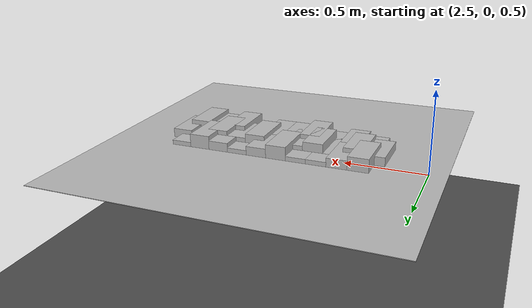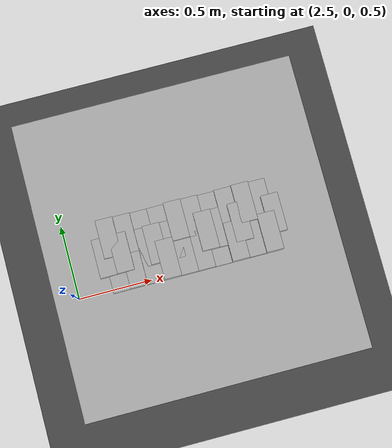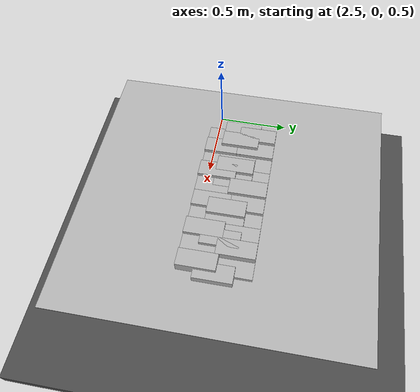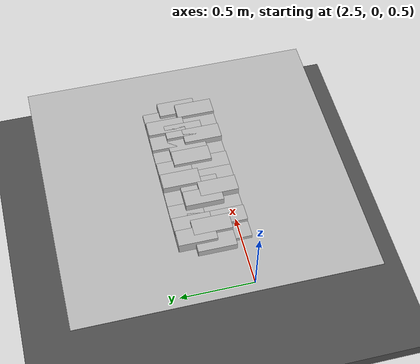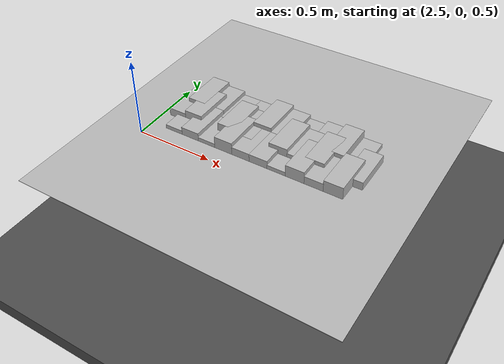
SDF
<sdf version="1.6">
 <world name="default">
  <model name="ground_plane">
   <static>1</static>
   <link name="link">
    <collision name="collision">
     <geometry><plane><normal>0 0 1</normal><size>100 100</size></plane></geometry>
     <surface><friction><ode><mu>100</mu><mu2>50</mu2></ode></friction></surface>
    </collision>
    <visual name="visual">
     <cast_shadows>0</cast_shadows>
     <geometry><plane><normal>0 0 1</normal><size>100 100</size></plane></geometry>
     <material>
      <script><uri>file://media/materials/scripts/gazebo.material</uri><name>Gazebo/Grey</name></script>
     </material>
    </visual>
   </link>
  </model>
  <model name="frc2016_roughterrain_0">
   <link name="link_clone_11">
    <pose>3.41491 0.178957 -0.066641 0 -0 0</pose>
    <inertial>
     <inertia><ixx>nan</ixx><ixy>0</ixy><ixz>0</ixz><iyy>nan</iyy><iyz>0</iyz><izz>nan</izz></inertia>
     <mass>0</mass>
    </inertial>
    <visual name="platform">
     <pose>0 0 0.08269 0 -0 0</pose>
     <geometry><box><size>1.91826 2.01688 0.003175</size></box></geometry>
     <material><shader type="pixel"/></material>
    </visual>
    <visual name="row1_block1_sm">
     <pose>0.51435 0.1143 0.09698 0 -0 0</pose>
     <geometry><box><size>0.115452 0.257474 0.0254</size></box></geometry>
     <material><shader type="pixel"/></material>
    </visual>
    <visual name="row1_block4_sm">
     <pose>0.17145 0.1143 0.09698 0 -0 0</pose>
     <geometry><box><size>0.115452 0.257474 0.0254</size></box></geometry>
     <material><shader type="pixel"/></material>
    </visual>
    <visual name="row1_block3_md">
     <pose>0.28575 0.1143 0.10968 0 -0 0</pose>
     <geometry><box><size>0.115452 0.257474 0.0508</size></box></geometry>
     <material><shader type="pixel"/></material>
    </visual>
    <visual name="row1_block6_lg">
     <pose>-0.05715 0.1143 0.12238 0 -0 0</pose>
     <geometry><box><size>0.115452 0.257474 0.0762</size></box></geometry>
     <material><shader type="pixel"/></material>
    </visual>
    <visual name="row1_block2_lg">
     <pose>0.40005 0.1143 0.12238 0 -0 0</pose>
     <geometry><box><size>0.115452 0.257474 0.0762</size></box></geometry>
     <material><shader type="pixel"/></material>
    </visual>
    <visual name="row1_block5_md">
     <pose>0.05715 0.1143 0.10968 0 -0 0</pose>
     <geometry><box><size>0.115452 0.257474 0.0508</size></box></geometry>
     <material><shader type="pixel"/></material>
    </visual>
    <visual name="row1_block8_sm">
     <pose>-0.28575 0.1143 0.09698 0 -0 0</pose>
     <geometry><box><size>0.115452 0.257474 0.0254</size></box></geometry>
     <material><shader type="pixel"/></material>
    </visual>
    <visual name="row1_block7_sm">
     <pose>-0.17145 0.1143 0.09698 0 -0 0</pose>
     <geometry><box><size>0.115452 0.257474 0.0254</size></box></geometry>
     <material><shader type="pixel"/></material>
    </visual>
    <visual name="row1_block9_md">
     <pose>-0.40005 0.1143 0.10968 0 -0 0</pose>
     <geometry><box><size>0.115452 0.257474 0.0508</size></box></geometry>
     <material><shader type="pixel"/></material>
    </visual>
    <visual name="row1_block10_lg">
     <pose>-0.51435 0.1143 0.12238 0 -0 0</pose>
     <geometry><box><size>0.115452 0.257474 0.0762</size></box></geometry>
     <material><shader type="pixel"/></material>
    </visual>
    <visual name="row2_block1_md">
     <pose>0.5715 0 0.10968 0 -0 0</pose>
     <geometry><box><size>0.115452 0.257474 0.0508</size></box></geometry>
     <material><shader type="pixel"/></material>
    </visual>
    <visual name="row2_block2_sm">
     <pose>0.4572 0 0.09698 0 -0 0</pose>
     <geometry><box><size>0.115452 0.257474 0.0254</size></box></geometry>
     <material><shader type="pixel"/></material>
    </visual>
    <visual name="row2_block3_lg">
     <pose>0.3429 0 0.12238 0 -0 0</pose>
     <geometry><box><size>0.115452 0.257474 0.0762</size></box></geometry>
     <material><shader type="pixel"/></material>
    </visual>
    <visual name="row2_block4_md">
     <pose>0.2286 0 0.10968 0 -0 0</pose>
     <geometry><box><size>0.115452 0.257474 0.0508</size></box></geometry>
     <material><shader type="pixel"/></material>
    </visual>
    <visual name="row2_block5_lg">
     <pose>0.1143 0 0.12238 0 -0 0</pose>
     <geometry><box><size>0.115452 0.257474 0.0762</size></box></geometry>
     <material><shader type="pixel"/></material>
    </visual>
    <visual name="row2_block6_sm">
     <pose>0 0 0.09698 0 -0 0</pose>
     <geometry><box><size>0.115452 0.257474 0.0254</size></box></geometry>
     <material><shader type="pixel"/></material>
    </visual>
    <visual name="row2_block7_md">
     <pose>-0.1143 0 0.10968 0 -0 0</pose>
     <geometry><box><size>0.115452 0.257474 0.0508</size></box></geometry>
     <material><shader type="pixel"/></material>
    </visual>
    <visual name="row2_block8_lg">
     <pose>-0.2286 0 0.12238 0 -0 0</pose>
     <geometry><box><size>0.115452 0.257474 0.0762</size></box></geometry>
     <material><shader type="pixel"/></material>
    </visual>
    <visual name="row2_block9_sm">
     <pose>-0.3429 0 0.09698 0 -0 0</pose>
     <geometry><box><size>0.115452 0.257474 0.0254</size></box></geometry>
     <material><shader type="pixel"/></material>
    </visual>
    <visual name="row2_block10_lg">
     <pose>-0.4572 0 0.12238 0 -0 0</pose>
     <geometry><box><size>0.115452 0.257474 0.0762</size></box></geometry>
     <material><shader type="pixel"/></material>
    </visual>
    <visual name="row2_block11_md">
     <pose>-0.5715 0 0.10968 0 -0 0</pose>
     <geometry><box><size>0.115452 0.257474 0.0508</size></box></geometry>
     <material><shader type="pixel"/></material>
    </visual>
    <visual name="row3_block2_md">
     <pose>0.40005 -0.1143 0.10968 0 -0 0</pose>
     <geometry><box><size>0.115452 0.257474 0.0508</size></box></geometry>
     <material><shader type="pixel"/></material>
    </visual>
    <visual name="row3_block1_lg">
     <pose>0.51435 -0.1143 0.12238 0 -0 0</pose>
     <geometry><box><size>0.115452 0.257474 0.0762</size></box></geometry>
     <material><shader type="pixel"/></material>
    </visual>
    <visual name="row3_block3_lg">
     <pose>0.28575 -0.1143 0.12238 0 -0 0</pose>
     <geometry><box><size>0.115452 0.257474 0.0762</size></box></geometry>
     <material><shader type="pixel"/></material>
    </visual>
    <visual name="row3_block4_sm">
     <pose>0.17145 -0.1143 0.09698 0 -0 0</pose>
     <geometry><box><size>0.115452 0.257474 0.0254</size></box></geometry>
     <material><shader type="pixel"/></material>
    </visual>
    <visual name="row3_block5_md">
     <pose>0.05715 -0.1143 0.10968 0 -0 0</pose>
     <geometry><box><size>0.115452 0.257474 0.0508</size></box></geometry>
     <material><shader type="pixel"/></material>
    </visual>
    <visual name="row3_block6_md">
     <pose>-0.05715 -0.1143 0.10968 0 -0 0</pose>
     <geometry><box><size>0.115452 0.257474 0.0508</size></box></geometry>
     <material><shader type="pixel"/></material>
    </visual>
    <visual name="row3_block8_sm">
     <pose>-0.28575 -0.1143 0.09698 0 -0 0</pose>
     <geometry><box><size>0.115452 0.257474 0.0254</size></box></geometry>
     <material><shader type="pixel"/></material>
    </visual>
    <visual name="row3_block7_lg">
     <pose>-0.17145 -0.1143 0.12238 0 -0 0</pose>
     <geometry><box><size>0.115452 0.257474 0.0762</size></box></geometry>
     <material><shader type="pixel"/></material>
    </visual>
    <visual name="row3_block9_md">
     <pose>-0.40005 -0.1143 0.10968 0 -0 0</pose>
     <geometry><box><size>0.115452 0.257474 0.0508</size></box></geometry>
     <material><shader type="pixel"/></material>
    </visual>
    <visual name="row3_block10_sm">
     <pose>-0.51435 -0.1143 0.09698 0 -0 0</pose>
     <geometry><box><size>0.115452 0.257474 0.0254</size></box></geometry>
     <material><shader type="pixel"/></material>
    </visual>
    <collision name="row2_block5_lg_0">
     <pose>0.1143 0 0.12238 0 -0 0</pose>
     <geometry><box><size>0.115452 0.257474 0.0762</size></box></geometry>
     <surface>
      <friction>
       <ode><mu>1</mu><mu2>1</mu2><fdir1>0 0 0</fdir1><slip1>0</slip1><slip2>0</slip2></ode>
       <torsional>
        <coefficient>1</coefficient>
        <patch_radius>0</patch_radius>
        <surface_radius>0</surface_radius>
        <use_patch_radius>1</use_patch_radius>
        <ode><slip>0</slip></ode>
       </torsional>
      </friction>
      <bounce><restitution_coefficient>0</restitution_coefficient><threshold>1e+06</threshold></bounce>
      <contact>
       <collide_without_contact>0</collide_without_contact>
       <collide_without_contact_bitmask>1</collide_without_contact_bitmask>
       <collide_bitmask>1</collide_bitmask>
       <ode>
        <soft_cfm>0</soft_cfm>
        <soft_erp>0.2</soft_erp>
        <kp>1e+13</kp>
        <kd>1</kd>
        <max_vel>0.01</max_vel>
        <min_depth>0</min_depth>
       </ode>
       <bullet>
        <split_impulse>1</split_impulse>
        <split_impulse_penetration_threshold>-0.01</split_impulse_penetration_threshold>
        <soft_cfm>0</soft_cfm>
        <soft_erp>0.2</soft_erp>
        <kp>1e+13</kp>
        <kd>1</kd>
       </bullet>
      </contact>
     </surface>
    </collision>
    <collision name="platform_0">
     <pose>0 0 0.08269 0 -0 0</pose>
     <geometry><box><size>1.91826 2.01688 0.003175</size></box></geometry>
     <surface>
      <friction>
       <ode><mu>1</mu><mu2>1</mu2><fdir1>0 0 0</fdir1><slip1>0</slip1><slip2>0</slip2></ode>
       <torsional>
        <coefficient>1</coefficient>
        <patch_radius>0</patch_radius>
        <surface_radius>0</surface_radius>
        <use_patch_radius>1</use_patch_radius>
        <ode><slip>0</slip></ode>
       </torsional>
      </friction>
      <bounce><restitution_coefficient>0</restitution_coefficient><threshold>1e+06</threshold></bounce>
      <contact>
       <collide_without_contact>0</collide_without_contact>
       <collide_without_contact_bitmask>1</collide_without_contact_bitmask>
       <collide_bitmask>1</collide_bitmask>
       <ode>
        <soft_cfm>0</soft_cfm>
        <soft_erp>0.2</soft_erp>
        <kp>1e+13</kp>
        <kd>1</kd>
        <max_vel>0.01</max_vel>
        <min_depth>0</min_depth>
       </ode>
       <bullet>
        <split_impulse>1</split_impulse>
        <split_impulse_penetration_threshold>-0.01</split_impulse_penetration_threshold>
        <soft_cfm>0</soft_cfm>
        <soft_erp>0.2</soft_erp>
        <kp>1e+13</kp>
        <kd>1</kd>
       </bullet>
      </contact>
     </surface>
    </collision>
    <collision name="row1_block1_sm_0">
     <pose>0.51435 0.1143 0.09698 0 -0 0</pose>
     <geometry><box><size>0.115452 0.257474 0.0254</size></box></geometry>
     <surface>
      <friction>
       <ode><mu>1</mu><mu2>1</mu2><fdir1>0 0 0</fdir1><slip1>0</slip1><slip2>0</slip2></ode>
       <torsional>
        <coefficient>1</coefficient>
        <patch_radius>0</patch_radius>
        <surface_radius>0</surface_radius>
        <use_patch_radius>1</use_patch_radius>
        <ode><slip>0</slip></ode>
       </torsional>
      </friction>
      <bounce><restitution_coefficient>0</restitution_coefficient><threshold>1e+06</threshold></bounce>
      <contact>
       <collide_without_contact>0</collide_without_contact>
       <collide_without_contact_bitmask>1</collide_without_contact_bitmask>
       <collide_bitmask>1</collide_bitmask>
       <ode>
        <soft_cfm>0</soft_cfm>
        <soft_erp>0.2</soft_erp>
        <kp>1e+13</kp>
        <kd>1</kd>
        <max_vel>0.01</max_vel>
        <min_depth>0</min_depth>
       </ode>
       <bullet>
        <split_impulse>1</split_impulse>
        <split_impulse_penetration_threshold>-0.01</split_impulse_penetration_threshold>
        <soft_cfm>0</soft_cfm>
        <soft_erp>0.2</soft_erp>
        <kp>1e+13</kp>
        <kd>1</kd>
       </bullet>
      </contact>
     </surface>
    </collision>
    <collision name="row1_block3_md_0">
     <pose>0.28575 0.1143 0.10968 0 -0 0</pose>
     <geometry><box><size>0.115452 0.257474 0.0508</size></box></geometry>
     <surface>
      <friction>
       <ode><mu>1</mu><mu2>1</mu2><fdir1>0 0 0</fdir1><slip1>0</slip1><slip2>0</slip2></ode>
       <torsional>
        <coefficient>1</coefficient>
        <patch_radius>0</patch_radius>
        <surface_radius>0</surface_radius>
        <use_patch_radius>1</use_patch_radius>
        <ode><slip>0</slip></ode>
       </torsional>
      </friction>
      <bounce><restitution_coefficient>0</restitution_coefficient><threshold>1e+06</threshold></bounce>
      <contact>
       <collide_without_contact>0</collide_without_contact>
       <collide_without_contact_bitmask>1</collide_without_contact_bitmask>
       <collide_bitmask>1</collide_bitmask>
       <ode>
        <soft_cfm>0</soft_cfm>
        <soft_erp>0.2</soft_erp>
        <kp>1e+13</kp>
        <kd>1</kd>
        <max_vel>0.01</max_vel>
        <min_depth>0</min_depth>
       </ode>
       <bullet>
        <split_impulse>1</split_impulse>
        <split_impulse_penetration_threshold>-0.01</split_impulse_penetration_threshold>
        <soft_cfm>0</soft_cfm>
        <soft_erp>0.2</soft_erp>
        <kp>1e+13</kp>
        <kd>1</kd>
       </bullet>
      </contact>
     </surface>
    </collision>
    <collision name="row1_block2_lg_0">
     <pose>0.40005 0.1143 0.12238 0 -0 0</pose>
     <geometry><box><size>0.115452 0.257474 0.0762</size></box></geometry>
     <surface>
      <friction>
       <ode><mu>1</mu><mu2>1</mu2><fdir1>0 0 0</fdir1><slip1>0</slip1><slip2>0</slip2></ode>
       <torsional>
        <coefficient>1</coefficient>
        <patch_radius>0</patch_radius>
        <surface_radius>0</surface_radius>
        <use_patch_radius>1</use_patch_radius>
        <ode><slip>0</slip></ode>
       </torsional>
      </friction>
      <bounce><restitution_coefficient>0</restitution_coefficient><threshold>1e+06</threshold></bounce>
      <contact>
       <collide_without_contact>0</collide_without_contact>
       <collide_without_contact_bitmask>1</collide_without_contact_bitmask>
       <collide_bitmask>1</collide_bitmask>
       <ode>
        <soft_cfm>0</soft_cfm>
        <soft_erp>0.2</soft_erp>
        <kp>1e+13</kp>
        <kd>1</kd>
        <max_vel>0.01</max_vel>
        <min_depth>0</min_depth>
       </ode>
       <bullet>
        <split_impulse>1</split_impulse>
        <split_impulse_penetration_threshold>-0.01</split_impulse_penetration_threshold>
        <soft_cfm>0</soft_cfm>
        <soft_erp>0.2</soft_erp>
        <kp>1e+13</kp>
        <kd>1</kd>
       </bullet>
      </contact>
     </surface>
    </collision>
    <collision name="row1_block5_md_0">
     <pose>0.05715 0.1143 0.10968 0 -0 0</pose>
     <geometry><box><size>0.115452 0.257474 0.0508</size></box></geometry>
     <surface>
      <friction>
       <ode><mu>1</mu><mu2>1</mu2><fdir1>0 0 0</fdir1><slip1>0</slip1><slip2>0</slip2></ode>
       <torsional>
        <coefficient>1</coefficient>
        <patch_radius>0</patch_radius>
        <surface_radius>0</surface_radius>
        <use_patch_radius>1</use_patch_radius>
        <ode><slip>0</slip></ode>
       </torsional>
      </friction>
      <bounce><restitution_coefficient>0</restitution_coefficient><threshold>1e+06</threshold></bounce>
      <contact>
       <collide_without_contact>0</collide_without_contact>
       <collide_without_contact_bitmask>1</collide_without_contact_bitmask>
       <collide_bitmask>1</collide_bitmask>
       <ode>
        <soft_cfm>0</soft_cfm>
        <soft_erp>0.2</soft_erp>
        <kp>1e+13</kp>
        <kd>1</kd>
        <max_vel>0.01</max_vel>
        <min_depth>0</min_depth>
       </ode>
       <bullet>
        <split_impulse>1</split_impulse>
        <split_impulse_penetration_threshold>-0.01</split_impulse_penetration_threshold>
        <soft_cfm>0</soft_cfm>
        <soft_erp>0.2</soft_erp>
        <kp>1e+13</kp>
        <kd>1</kd>
       </bullet>
      </contact>
     </surface>
    </collision>
    <collision name="row1_block4_sm_0">
     <pose>0.17145 0.1143 0.09698 0 -0 0</pose>
     <geometry><box><size>0.115452 0.257474 0.0254</size></box></geometry>
     <surface>
      <friction>
       <ode><mu>1</mu><mu2>1</mu2><fdir1>0 0 0</fdir1><slip1>0</slip1><slip2>0</slip2></ode>
       <torsional>
        <coefficient>1</coefficient>
        <patch_radius>0</patch_radius>
        <surface_radius>0</surface_radius>
        <use_patch_radius>1</use_patch_radius>
        <ode><slip>0</slip></ode>
       </torsional>
      </friction>
      <bounce><restitution_coefficient>0</restitution_coefficient><threshold>1e+06</threshold></bounce>
      <contact>
       <collide_without_contact>0</collide_without_contact>
       <collide_without_contact_bitmask>1</collide_without_contact_bitmask>
       <collide_bitmask>1</collide_bitmask>
       <ode>
        <soft_cfm>0</soft_cfm>
        <soft_erp>0.2</soft_erp>
        <kp>1e+13</kp>
        <kd>1</kd>
        <max_vel>0.01</max_vel>
        <min_depth>0</min_depth>
       </ode>
       <bullet>
        <split_impulse>1</split_impulse>
        <split_impulse_penetration_threshold>-0.01</split_impulse_penetration_threshold>
        <soft_cfm>0</soft_cfm>
        <soft_erp>0.2</soft_erp>
        <kp>1e+13</kp>
        <kd>1</kd>
       </bullet>
      </contact>
     </surface>
    </collision>
    <collision name="row1_block8_sm_0">
     <pose>-0.28575 0.1143 0.09698 0 -0 0</pose>
     <geometry><box><size>0.115452 0.257474 0.0254</size></box></geometry>
     <surface>
      <friction>
       <ode><mu>1</mu><mu2>1</mu2><fdir1>0 0 0</fdir1><slip1>0</slip1><slip2>0</slip2></ode>
       <torsional>
        <coefficient>1</coefficient>
        <patch_radius>0</patch_radius>
        <surface_radius>0</surface_radius>
        <use_patch_radius>1</use_patch_radius>
        <ode><slip>0</slip></ode>
       </torsional>
      </friction>
      <bounce><restitution_coefficient>0</restitution_coefficient><threshold>1e+06</threshold></bounce>
      <contact>
       <collide_without_contact>0</collide_without_contact>
       <collide_without_contact_bitmask>1</collide_without_contact_bitmask>
       <collide_bitmask>1</collide_bitmask>
       <ode>
        <soft_cfm>0</soft_cfm>
        <soft_erp>0.2</soft_erp>
        <kp>1e+13</kp>
        <kd>1</kd>
        <max_vel>0.01</max_vel>
        <min_depth>0</min_depth>
       </ode>
       <bullet>
        <split_impulse>1</split_impulse>
        <split_impulse_penetration_threshold>-0.01</split_impulse_penetration_threshold>
        <soft_cfm>0</soft_cfm>
        <soft_erp>0.2</soft_erp>
        <kp>1e+13</kp>
        <kd>1</kd>
       </bullet>
      </contact>
     </surface>
    </collision>
    <collision name="row1_block6_lg_0">
     <pose>-0.05715 0.1143 0.12238 0 -0 0</pose>
     <geometry><box><size>0.115452 0.257474 0.0762</size></box></geometry>
     <surface>
      <friction>
       <ode><mu>1</mu><mu2>1</mu2><fdir1>0 0 0</fdir1><slip1>0</slip1><slip2>0</slip2></ode>
       <torsional>
        <coefficient>1</coefficient>
        <patch_radius>0</patch_radius>
        <surface_radius>0</surface_radius>
        <use_patch_radius>1</use_patch_radius>
        <ode><slip>0</slip></ode>
       </torsional>
      </friction>
      <bounce><restitution_coefficient>0</restitution_coefficient><threshold>1e+06</threshold></bounce>
      <contact>
       <collide_without_contact>0</collide_without_contact>
       <collide_without_contact_bitmask>1</collide_without_contact_bitmask>
       <collide_bitmask>1</collide_bitmask>
       <ode>
        <soft_cfm>0</soft_cfm>
        <soft_erp>0.2</soft_erp>
        <kp>1e+13</kp>
        <kd>1</kd>
        <max_vel>0.01</max_vel>
        <min_depth>0</min_depth>
       </ode>
       <bullet>
        <split_impulse>1</split_impulse>
        <split_impulse_penetration_threshold>-0.01</split_impulse_penetration_threshold>
        <soft_cfm>0</soft_cfm>
        <soft_erp>0.2</soft_erp>
        <kp>1e+13</kp>
        <kd>1</kd>
       </bullet>
      </contact>
     </surface>
    </collision>
    <collision name="row1_block7_sm_0">
     <pose>-0.17145 0.1143 0.09698 0 -0 0</pose>
     <geometry><box><size>0.115452 0.257474 0.0254</size></box></geometry>
     <surface>
      <friction>
       <ode><mu>1</mu><mu2>1</mu2><fdir1>0 0 0</fdir1><slip1>0</slip1><slip2>0</slip2></ode>
       <torsional>
        <coefficient>1</coefficient>
        <patch_radius>0</patch_radius>
        <surface_radius>0</surface_radius>
        <use_patch_radius>1</use_patch_radius>
        <ode><slip>0</slip></ode>
       </torsional>
      </friction>
      <bounce><restitution_coefficient>0</restitution_coefficient><threshold>1e+06</threshold></bounce>
      <contact>
       <collide_without_contact>0</collide_without_contact>
       <collide_without_contact_bitmask>1</collide_without_contact_bitmask>
       <collide_bitmask>1</collide_bitmask>
       <ode>
        <soft_cfm>0</soft_cfm>
        <soft_erp>0.2</soft_erp>
        <kp>1e+13</kp>
        <kd>1</kd>
        <max_vel>0.01</max_vel>
        <min_depth>0</min_depth>
       </ode>
       <bullet>
        <split_impulse>1</split_impulse>
        <split_impulse_penetration_threshold>-0.01</split_impulse_penetration_threshold>
        <soft_cfm>0</soft_cfm>
        <soft_erp>0.2</soft_erp>
        <kp>1e+13</kp>
        <kd>1</kd>
       </bullet>
      </contact>
     </surface>
    </collision>
    <collision name="row1_block10_lg_0">
     <pose>-0.51435 0.1143 0.12238 0 -0 0</pose>
     <geometry><box><size>0.115452 0.257474 0.0762</size></box></geometry>
     <surface>
      <friction>
       <ode><mu>1</mu><mu2>1</mu2><fdir1>0 0 0</fdir1><slip1>0</slip1><slip2>0</slip2></ode>
       <torsional>
        <coefficient>1</coefficient>
        <patch_radius>0</patch_radius>
        <surface_radius>0</surface_radius>
        <use_patch_radius>1</use_patch_radius>
        <ode><slip>0</slip></ode>
       </torsional>
      </friction>
      <bounce><restitution_coefficient>0</restitution_coefficient><threshold>1e+06</threshold></bounce>
      <contact>
       <collide_without_contact>0</collide_without_contact>
       <collide_without_contact_bitmask>1</collide_without_contact_bitmask>
       <collide_bitmask>1</collide_bitmask>
       <ode>
        <soft_cfm>0</soft_cfm>
        <soft_erp>0.2</soft_erp>
        <kp>1e+13</kp>
        <kd>1</kd>
        <max_vel>0.01</max_vel>
        <min_depth>0</min_depth>
       </ode>
       <bullet>
        <split_impulse>1</split_impulse>
        <split_impulse_penetration_threshold>-0.01</split_impulse_penetration_threshold>
        <soft_cfm>0</soft_cfm>
        <soft_erp>0.2</soft_erp>
        <kp>1e+13</kp>
        <kd>1</kd>
       </bullet>
      </contact>
     </surface>
    </collision>
    <collision name="row1_block9_md_0">
     <pose>-0.40005 0.1143 0.10968 0 -0 0</pose>
     <geometry><box><size>0.115452 0.257474 0.0508</size></box></geometry>
     <surface>
      <friction>
       <ode><mu>1</mu><mu2>1</mu2><fdir1>0 0 0</fdir1><slip1>0</slip1><slip2>0</slip2></ode>
       <torsional>
        <coefficient>1</coefficient>
        <patch_radius>0</patch_radius>
        <surface_radius>0</surface_radius>
        <use_patch_radius>1</use_patch_radius>
        <ode><slip>0</slip></ode>
       </torsional>
      </friction>
      <bounce><restitution_coefficient>0</restitution_coefficient><threshold>1e+06</threshold></bounce>
      <contact>
       <collide_without_contact>0</collide_without_contact>
       <collide_without_contact_bitmask>1</collide_without_contact_bitmask>
       <collide_bitmask>1</collide_bitmask>
       <ode>
        <soft_cfm>0</soft_cfm>
        <soft_erp>0.2</soft_erp>
        <kp>1e+13</kp>
        <kd>1</kd>
        <max_vel>0.01</max_vel>
        <min_depth>0</min_depth>
       </ode>
       <bullet>
        <split_impulse>1</split_impulse>
        <split_impulse_penetration_threshold>-0.01</split_impulse_penetration_threshold>
        <soft_cfm>0</soft_cfm>
        <soft_erp>0.2</soft_erp>
        <kp>1e+13</kp>
        <kd>1</kd>
       </bullet>
      </contact>
     </surface>
    </collision>
    <collision name="row2_block2_sm_0">
     <pose>0.4572 0 0.09698 0 -0 0</pose>
     <geometry><box><size>0.115452 0.257474 0.0254</size></box></geometry>
     <surface>
      <friction>
       <ode><mu>1</mu><mu2>1</mu2><fdir1>0 0 0</fdir1><slip1>0</slip1><slip2>0</slip2></ode>
       <torsional>
        <coefficient>1</coefficient>
        <patch_radius>0</patch_radius>
        <surface_radius>0</surface_radius>
        <use_patch_radius>1</use_patch_radius>
        <ode><slip>0</slip></ode>
       </torsional>
      </friction>
      <bounce><restitution_coefficient>0</restitution_coefficient><threshold>1e+06</threshold></bounce>
      <contact>
       <collide_without_contact>0</collide_without_contact>
       <collide_without_contact_bitmask>1</collide_without_contact_bitmask>
       <collide_bitmask>1</collide_bitmask>
       <ode>
        <soft_cfm>0</soft_cfm>
        <soft_erp>0.2</soft_erp>
        <kp>1e+13</kp>
        <kd>1</kd>
        <max_vel>0.01</max_vel>
        <min_depth>0</min_depth>
       </ode>
       <bullet>
        <split_impulse>1</split_impulse>
        <split_impulse_penetration_threshold>-0.01</split_impulse_penetration_threshold>
        <soft_cfm>0</soft_cfm>
        <soft_erp>0.2</soft_erp>
        <kp>1e+13</kp>
        <kd>1</kd>
       </bullet>
      </contact>
     </surface>
    </collision>
    <collision name="row2_block1_md_0">
     <pose>0.5715 0 0.10968 0 -0 0</pose>
     <geometry><box><size>0.115452 0.257474 0.0508</size></box></geometry>
     <surface>
      <friction>
       <ode><mu>1</mu><mu2>1</mu2><fdir1>0 0 0</fdir1><slip1>0</slip1><slip2>0</slip2></ode>
       <torsional>
        <coefficient>1</coefficient>
        <patch_radius>0</patch_radius>
        <surface_radius>0</surface_radius>
        <use_patch_radius>1</use_patch_radius>
        <ode><slip>0</slip></ode>
       </torsional>
      </friction>
      <bounce><restitution_coefficient>0</restitution_coefficient><threshold>1e+06</threshold></bounce>
      <contact>
       <collide_without_contact>0</collide_without_contact>
       <collide_without_contact_bitmask>1</collide_without_contact_bitmask>
       <collide_bitmask>1</collide_bitmask>
       <ode>
        <soft_cfm>0</soft_cfm>
        <soft_erp>0.2</soft_erp>
        <kp>1e+13</kp>
        <kd>1</kd>
        <max_vel>0.01</max_vel>
        <min_depth>0</min_depth>
       </ode>
       <bullet>
        <split_impulse>1</split_impulse>
        <split_impulse_penetration_threshold>-0.01</split_impulse_penetration_threshold>
        <soft_cfm>0</soft_cfm>
        <soft_erp>0.2</soft_erp>
        <kp>1e+13</kp>
        <kd>1</kd>
       </bullet>
      </contact>
     </surface>
    </collision>
    <collision name="row2_block4_md_0">
     <pose>0.2286 0 0.10968 0 -0 0</pose>
     <geometry><box><size>0.115452 0.257474 0.0508</size></box></geometry>
     <surface>
      <friction>
       <ode><mu>1</mu><mu2>1</mu2><fdir1>0 0 0</fdir1><slip1>0</slip1><slip2>0</slip2></ode>
       <torsional>
        <coefficient>1</coefficient>
        <patch_radius>0</patch_radius>
        <surface_radius>0</surface_radius>
        <use_patch_radius>1</use_patch_radius>
        <ode><slip>0</slip></ode>
       </torsional>
      </friction>
      <bounce><restitution_coefficient>0</restitution_coefficient><threshold>1e+06</threshold></bounce>
      <contact>
       <collide_without_contact>0</collide_without_contact>
       <collide_without_contact_bitmask>1</collide_without_contact_bitmask>
       <collide_bitmask>1</collide_bitmask>
       <ode>
        <soft_cfm>0</soft_cfm>
        <soft_erp>0.2</soft_erp>
        <kp>1e+13</kp>
        <kd>1</kd>
        <max_vel>0.01</max_vel>
        <min_depth>0</min_depth>
       </ode>
       <bullet>
        <split_impulse>1</split_impulse>
        <split_impulse_penetration_threshold>-0.01</split_impulse_penetration_threshold>
        <soft_cfm>0</soft_cfm>
        <soft_erp>0.2</soft_erp>
        <kp>1e+13</kp>
        <kd>1</kd>
       </bullet>
      </contact>
     </surface>
    </collision>
    <collision name="row2_block6_sm_0">
     <pose>0 0 0.09698 0 -0 0</pose>
     <geometry><box><size>0.115452 0.257474 0.0254</size></box></geometry>
     <surface>
      <friction>
       <ode><mu>1</mu><mu2>1</mu2><fdir1>0 0 0</fdir1><slip1>0</slip1><slip2>0</slip2></ode>
       <torsional>
        <coefficient>1</coefficient>
        <patch_radius>0</patch_radius>
        <surface_radius>0</surface_radius>
        <use_patch_radius>1</use_patch_radius>
        <ode><slip>0</slip></ode>
       </torsional>
      </friction>
      <bounce><restitution_coefficient>0</restitution_coefficient><threshold>1e+06</threshold></bounce>
      <contact>
       <collide_without_contact>0</collide_without_contact>
       <collide_without_contact_bitmask>1</collide_without_contact_bitmask>
       <collide_bitmask>1</collide_bitmask>
       <ode>
        <soft_cfm>0</soft_cfm>
        <soft_erp>0.2</soft_erp>
        <kp>1e+13</kp>
        <kd>1</kd>
        <max_vel>0.01</max_vel>
        <min_depth>0</min_depth>
       </ode>
       <bullet>
        <split_impulse>1</split_impulse>
        <split_impulse_penetration_threshold>-0.01</split_impulse_penetration_threshold>
        <soft_cfm>0</soft_cfm>
        <soft_erp>0.2</soft_erp>
        <kp>1e+13</kp>
        <kd>1</kd>
       </bullet>
      </contact>
     </surface>
    </collision>
    <collision name="row2_block3_lg_0">
     <pose>0.3429 0 0.12238 0 -0 0</pose>
     <geometry><box><size>0.115452 0.257474 0.0762</size></box></geometry>
     <surface>
      <friction>
       <ode><mu>1</mu><mu2>1</mu2><fdir1>0 0 0</fdir1><slip1>0</slip1><slip2>0</slip2></ode>
       <torsional>
        <coefficient>1</coefficient>
        <patch_radius>0</patch_radius>
        <surface_radius>0</surface_radius>
        <use_patch_radius>1</use_patch_radius>
        <ode><slip>0</slip></ode>
       </torsional>
      </friction>
      <bounce><restitution_coefficient>0</restitution_coefficient><threshold>1e+06</threshold></bounce>
      <contact>
       <collide_without_contact>0</collide_without_contact>
       <collide_without_contact_bitmask>1</collide_without_contact_bitmask>
       <collide_bitmask>1</collide_bitmask>
       <ode>
        <soft_cfm>0</soft_cfm>
        <soft_erp>0.2</soft_erp>
        <kp>1e+13</kp>
        <kd>1</kd>
        <max_vel>0.01</max_vel>
        <min_depth>0</min_depth>
       </ode>
       <bullet>
        <split_impulse>1</split_impulse>
        <split_impulse_penetration_threshold>-0.01</split_impulse_penetration_threshold>
        <soft_cfm>0</soft_cfm>
        <soft_erp>0.2</soft_erp>
        <kp>1e+13</kp>
        <kd>1</kd>
       </bullet>
      </contact>
     </surface>
    </collision>
    <collision name="row2_block7_md_0">
     <pose>-0.1143 0 0.10968 0 -0 0</pose>
     <geometry><box><size>0.115452 0.257474 0.0508</size></box></geometry>
     <surface>
      <friction>
       <ode><mu>1</mu><mu2>1</mu2><fdir1>0 0 0</fdir1><slip1>0</slip1><slip2>0</slip2></ode>
       <torsional>
        <coefficient>1</coefficient>
        <patch_radius>0</patch_radius>
        <surface_radius>0</surface_radius>
        <use_patch_radius>1</use_patch_radius>
        <ode><slip>0</slip></ode>
       </torsional>
      </friction>
      <bounce><restitution_coefficient>0</restitution_coefficient><threshold>1e+06</threshold></bounce>
      <contact>
       <collide_without_contact>0</collide_without_contact>
       <collide_without_contact_bitmask>1</collide_without_contact_bitmask>
       <collide_bitmask>1</collide_bitmask>
       <ode>
        <soft_cfm>0</soft_cfm>
        <soft_erp>0.2</soft_erp>
        <kp>1e+13</kp>
        <kd>1</kd>
        <max_vel>0.01</max_vel>
        <min_depth>0</min_depth>
       </ode>
       <bullet>
        <split_impulse>1</split_impulse>
        <split_impulse_penetration_threshold>-0.01</split_impulse_penetration_threshold>
        <soft_cfm>0</soft_cfm>
        <soft_erp>0.2</soft_erp>
        <kp>1e+13</kp>
        <kd>1</kd>
       </bullet>
      </contact>
     </surface>
    </collision>
    <collision name="row2_block10_lg_0">
     <pose>-0.4572 0 0.12238 0 -0 0</pose>
     <geometry><box><size>0.115452 0.257474 0.0762</size></box></geometry>
     <surface>
      <friction>
       <ode><mu>1</mu><mu2>1</mu2><fdir1>0 0 0</fdir1><slip1>0</slip1><slip2>0</slip2></ode>
       <torsional>
        <coefficient>1</coefficient>
        <patch_radius>0</patch_radius>
        <surface_radius>0</surface_radius>
        <use_patch_radius>1</use_patch_radius>
        <ode><slip>0</slip></ode>
       </torsional>
      </friction>
      <bounce><restitution_coefficient>0</restitution_coefficient><threshold>1e+06</threshold></bounce>
      <contact>
       <collide_without_contact>0</collide_without_contact>
       <collide_without_contact_bitmask>1</collide_without_contact_bitmask>
       <collide_bitmask>1</collide_bitmask>
       <ode>
        <soft_cfm>0</soft_cfm>
        <soft_erp>0.2</soft_erp>
        <kp>1e+13</kp>
        <kd>1</kd>
        <max_vel>0.01</max_vel>
        <min_depth>0</min_depth>
       </ode>
       <bullet>
        <split_impulse>1</split_impulse>
        <split_impulse_penetration_threshold>-0.01</split_impulse_penetration_threshold>
        <soft_cfm>0</soft_cfm>
        <soft_erp>0.2</soft_erp>
        <kp>1e+13</kp>
        <kd>1</kd>
       </bullet>
      </contact>
     </surface>
    </collision>
    <collision name="row2_block11_md_0">
     <pose>-0.5715 0 0.10968 0 -0 0</pose>
     <geometry><box><size>0.115452 0.257474 0.0508</size></box></geometry>
     <surface>
      <friction>
       <ode><mu>1</mu><mu2>1</mu2><fdir1>0 0 0</fdir1><slip1>0</slip1><slip2>0</slip2></ode>
       <torsional>
        <coefficient>1</coefficient>
        <patch_radius>0</patch_radius>
        <surface_radius>0</surface_radius>
        <use_patch_radius>1</use_patch_radius>
        <ode><slip>0</slip></ode>
       </torsional>
      </friction>
      <bounce><restitution_coefficient>0</restitution_coefficient><threshold>1e+06</threshold></bounce>
      <contact>
       <collide_without_contact>0</collide_without_contact>
       <collide_without_contact_bitmask>1</collide_without_contact_bitmask>
       <collide_bitmask>1</collide_bitmask>
       <ode>
        <soft_cfm>0</soft_cfm>
        <soft_erp>0.2</soft_erp>
        <kp>1e+13</kp>
        <kd>1</kd>
        <max_vel>0.01</max_vel>
        <min_depth>0</min_depth>
       </ode>
       <bullet>
        <split_impulse>1</split_impulse>
        <split_impulse_penetration_threshold>-0.01</split_impulse_penetration_threshold>
        <soft_cfm>0</soft_cfm>
        <soft_erp>0.2</soft_erp>
        <kp>1e+13</kp>
        <kd>1</kd>
       </bullet>
      </contact>
     </surface>
    </collision>
    <collision name="row2_block8_lg_0">
     <pose>-0.2286 0 0.12238 0 -0 0</pose>
     <geometry><box><size>0.115452 0.257474 0.0762</size></box></geometry>
     <surface>
      <friction>
       <ode><mu>1</mu><mu2>1</mu2><fdir1>0 0 0</fdir1><slip1>0</slip1><slip2>0</slip2></ode>
       <torsional>
        <coefficient>1</coefficient>
        <patch_radius>0</patch_radius>
        <surface_radius>0</surface_radius>
        <use_patch_radius>1</use_patch_radius>
        <ode><slip>0</slip></ode>
       </torsional>
      </friction>
      <bounce><restitution_coefficient>0</restitution_coefficient><threshold>1e+06</threshold></bounce>
      <contact>
       <collide_without_contact>0</collide_without_contact>
       <collide_without_contact_bitmask>1</collide_without_contact_bitmask>
       <collide_bitmask>1</collide_bitmask>
       <ode>
        <soft_cfm>0</soft_cfm>
        <soft_erp>0.2</soft_erp>
        <kp>1e+13</kp>
        <kd>1</kd>
        <max_vel>0.01</max_vel>
        <min_depth>0</min_depth>
       </ode>
       <bullet>
        <split_impulse>1</split_impulse>
        <split_impulse_penetration_threshold>-0.01</split_impulse_penetration_threshold>
        <soft_cfm>0</soft_cfm>
        <soft_erp>0.2</soft_erp>
        <kp>1e+13</kp>
        <kd>1</kd>
       </bullet>
      </contact>
     </surface>
    </collision>
    <collision name="row2_block9_sm_0">
     <pose>-0.3429 0 0.09698 0 -0 0</pose>
     <geometry><box><size>0.115452 0.257474 0.0254</size></box></geometry>
     <surface>
      <friction>
       <ode><mu>1</mu><mu2>1</mu2><fdir1>0 0 0</fdir1><slip1>0</slip1><slip2>0</slip2></ode>
       <torsional>
        <coefficient>1</coefficient>
        <patch_radius>0</patch_radius>
        <surface_radius>0</surface_radius>
        <use_patch_radius>1</use_patch_radius>
        <ode><slip>0</slip></ode>
       </torsional>
      </friction>
      <bounce><restitution_coefficient>0</restitution_coefficient><threshold>1e+06</threshold></bounce>
      <contact>
       <collide_without_contact>0</collide_without_contact>
       <collide_without_contact_bitmask>1</collide_without_contact_bitmask>
       <collide_bitmask>1</collide_bitmask>
       <ode>
        <soft_cfm>0</soft_cfm>
        <soft_erp>0.2</soft_erp>
        <kp>1e+13</kp>
        <kd>1</kd>
        <max_vel>0.01</max_vel>
        <min_depth>0</min_depth>
       </ode>
       <bullet>
        <split_impulse>1</split_impulse>
        <split_impulse_penetration_threshold>-0.01</split_impulse_penetration_threshold>
        <soft_cfm>0</soft_cfm>
        <soft_erp>0.2</soft_erp>
        <kp>1e+13</kp>
        <kd>1</kd>
       </bullet>
      </contact>
     </surface>
    </collision>
    <collision name="row3_block2_md_0">
     <pose>0.40005 -0.1143 0.10968 0 -0 0</pose>
     <geometry><box><size>0.115452 0.257474 0.0508</size></box></geometry>
     <surface>
      <friction>
       <ode><mu>1</mu><mu2>1</mu2><fdir1>0 0 0</fdir1><slip1>0</slip1><slip2>0</slip2></ode>
       <torsional>
        <coefficient>1</coefficient>
        <patch_radius>0</patch_radius>
        <surface_radius>0</surface_radius>
        <use_patch_radius>1</use_patch_radius>
        <ode><slip>0</slip></ode>
       </torsional>
      </friction>
      <bounce><restitution_coefficient>0</restitution_coefficient><threshold>1e+06</threshold></bounce>
      <contact>
       <collide_without_contact>0</collide_without_contact>
       <collide_without_contact_bitmask>1</collide_without_contact_bitmask>
       <collide_bitmask>1</collide_bitmask>
       <ode>
        <soft_cfm>0</soft_cfm>
        <soft_erp>0.2</soft_erp>
        <kp>1e+13</kp>
        <kd>1</kd>
        <max_vel>0.01</max_vel>
        <min_depth>0</min_depth>
       </ode>
       <bullet>
        <split_impulse>1</split_impulse>
        <split_impulse_penetration_threshold>-0.01</split_impulse_penetration_threshold>
        <soft_cfm>0</soft_cfm>
        <soft_erp>0.2</soft_erp>
        <kp>1e+13</kp>
        <kd>1</kd>
       </bullet>
      </contact>
     </surface>
    </collision>
    <collision name="row3_block1_lg_0">
     <pose>0.51435 -0.1143 0.12238 0 -0 0</pose>
     <geometry><box><size>0.115452 0.257474 0.0762</size></box></geometry>
     <surface>
      <friction>
       <ode><mu>1</mu><mu2>1</mu2><fdir1>0 0 0</fdir1><slip1>0</slip1><slip2>0</slip2></ode>
       <torsional>
        <coefficient>1</coefficient>
        <patch_radius>0</patch_radius>
        <surface_radius>0</surface_radius>
        <use_patch_radius>1</use_patch_radius>
        <ode><slip>0</slip></ode>
       </torsional>
      </friction>
      <bounce><restitution_coefficient>0</restitution_coefficient><threshold>1e+06</threshold></bounce>
      <contact>
       <collide_without_contact>0</collide_without_contact>
       <collide_without_contact_bitmask>1</collide_without_contact_bitmask>
       <collide_bitmask>1</collide_bitmask>
       <ode>
        <soft_cfm>0</soft_cfm>
        <soft_erp>0.2</soft_erp>
        <kp>1e+13</kp>
        <kd>1</kd>
        <max_vel>0.01</max_vel>
        <min_depth>0</min_depth>
       </ode>
       <bullet>
        <split_impulse>1</split_impulse>
        <split_impulse_penetration_threshold>-0.01</split_impulse_penetration_threshold>
        <soft_cfm>0</soft_cfm>
        <soft_erp>0.2</soft_erp>
        <kp>1e+13</kp>
        <kd>1</kd>
       </bullet>
      </contact>
     </surface>
    </collision>
    <collision name="row3_block3_lg_0">
     <pose>0.28575 -0.1143 0.12238 0 -0 0</pose>
     <geometry><box><size>0.115452 0.257474 0.0762</size></box></geometry>
     <surface>
      <friction>
       <ode><mu>1</mu><mu2>1</mu2><fdir1>0 0 0</fdir1><slip1>0</slip1><slip2>0</slip2></ode>
       <torsional>
        <coefficient>1</coefficient>
        <patch_radius>0</patch_radius>
        <surface_radius>0</surface_radius>
        <use_patch_radius>1</use_patch_radius>
        <ode><slip>0</slip></ode>
       </torsional>
      </friction>
      <bounce><restitution_coefficient>0</restitution_coefficient><threshold>1e+06</threshold></bounce>
      <contact>
       <collide_without_contact>0</collide_without_contact>
       <collide_without_contact_bitmask>1</collide_without_contact_bitmask>
       <collide_bitmask>1</collide_bitmask>
       <ode>
        <soft_cfm>0</soft_cfm>
        <soft_erp>0.2</soft_erp>
        <kp>1e+13</kp>
        <kd>1</kd>
        <max_vel>0.01</max_vel>
        <min_depth>0</min_depth>
       </ode>
       <bullet>
        <split_impulse>1</split_impulse>
        <split_impulse_penetration_threshold>-0.01</split_impulse_penetration_threshold>
        <soft_cfm>0</soft_cfm>
        <soft_erp>0.2</soft_erp>
        <kp>1e+13</kp>
        <kd>1</kd>
       </bullet>
      </contact>
     </surface>
    </collision>
    <collision name="row3_block4_sm_0">
     <pose>0.17145 -0.1143 0.09698 0 -0 0</pose>
     <geometry><box><size>0.115452 0.257474 0.0254</size></box></geometry>
     <surface>
      <friction>
       <ode><mu>1</mu><mu2>1</mu2><fdir1>0 0 0</fdir1><slip1>0</slip1><slip2>0</slip2></ode>
       <torsional>
        <coefficient>1</coefficient>
        <patch_radius>0</patch_radius>
        <surface_radius>0</surface_radius>
        <use_patch_radius>1</use_patch_radius>
        <ode><slip>0</slip></ode>
       </torsional>
      </friction>
      <bounce><restitution_coefficient>0</restitution_coefficient><threshold>1e+06</threshold></bounce>
      <contact>
       <collide_without_contact>0</collide_without_contact>
       <collide_without_contact_bitmask>1</collide_without_contact_bitmask>
       <collide_bitmask>1</collide_bitmask>
       <ode>
        <soft_cfm>0</soft_cfm>
        <soft_erp>0.2</soft_erp>
        <kp>1e+13</kp>
        <kd>1</kd>
        <max_vel>0.01</max_vel>
        <min_depth>0</min_depth>
       </ode>
       <bullet>
        <split_impulse>1</split_impulse>
        <split_impulse_penetration_threshold>-0.01</split_impulse_penetration_threshold>
        <soft_cfm>0</soft_cfm>
        <soft_erp>0.2</soft_erp>
        <kp>1e+13</kp>
        <kd>1</kd>
       </bullet>
      </contact>
     </surface>
    </collision>
    <collision name="row3_block8_sm_0">
     <pose>-0.28575 -0.1143 0.09698 0 -0 0</pose>
     <geometry><box><size>0.115452 0.257474 0.0254</size></box></geometry>
     <surface>
      <friction>
       <ode><mu>1</mu><mu2>1</mu2><fdir1>0 0 0</fdir1><slip1>0</slip1><slip2>0</slip2></ode>
       <torsional>
        <coefficient>1</coefficient>
        <patch_radius>0</patch_radius>
        <surface_radius>0</surface_radius>
        <use_patch_radius>1</use_patch_radius>
        <ode><slip>0</slip></ode>
       </torsional>
      </friction>
      <bounce><restitution_coefficient>0</restitution_coefficient><threshold>1e+06</threshold></bounce>
      <contact>
       <collide_without_contact>0</collide_without_contact>
       <collide_without_contact_bitmask>1</collide_without_contact_bitmask>
       <collide_bitmask>1</collide_bitmask>
       <ode>
        <soft_cfm>0</soft_cfm>
        <soft_erp>0.2</soft_erp>
        <kp>1e+13</kp>
        <kd>1</kd>
        <max_vel>0.01</max_vel>
        <min_depth>0</min_depth>
       </ode>
       <bullet>
        <split_impulse>1</split_impulse>
        <split_impulse_penetration_threshold>-0.01</split_impulse_penetration_threshold>
        <soft_cfm>0</soft_cfm>
        <soft_erp>0.2</soft_erp>
        <kp>1e+13</kp>
        <kd>1</kd>
       </bullet>
      </contact>
     </surface>
    </collision>
    <collision name="row3_block5_md_0">
     <pose>0.05715 -0.1143 0.10968 0 -0 0</pose>
     <geometry><box><size>0.115452 0.257474 0.0508</size></box></geometry>
     <surface>
      <friction>
       <ode><mu>1</mu><mu2>1</mu2><fdir1>0 0 0</fdir1><slip1>0</slip1><slip2>0</slip2></ode>
       <torsional>
        <coefficient>1</coefficient>
        <patch_radius>0</patch_radius>
        <surface_radius>0</surface_radius>
        <use_patch_radius>1</use_patch_radius>
        <ode><slip>0</slip></ode>
       </torsional>
      </friction>
      <bounce><restitution_coefficient>0</restitution_coefficient><threshold>1e+06</threshold></bounce>
      <contact>
       <collide_without_contact>0</collide_without_contact>
       <collide_without_contact_bitmask>1</collide_without_contact_bitmask>
       <collide_bitmask>1</collide_bitmask>
       <ode>
        <soft_cfm>0</soft_cfm>
        <soft_erp>0.2</soft_erp>
        <kp>1e+13</kp>
        <kd>1</kd>
        <max_vel>0.01</max_vel>
        <min_depth>0</min_depth>
       </ode>
       <bullet>
        <split_impulse>1</split_impulse>
        <split_impulse_penetration_threshold>-0.01</split_impulse_penetration_threshold>
        <soft_cfm>0</soft_cfm>
        <soft_erp>0.2</soft_erp>
        <kp>1e+13</kp>
        <kd>1</kd>
       </bullet>
      </contact>
     </surface>
    </collision>
    <collision name="row3_block7_lg_0">
     <pose>-0.17145 -0.1143 0.12238 0 -0 0</pose>
     <geometry><box><size>0.115452 0.257474 0.0762</size></box></geometry>
     <surface>
      <friction>
       <ode><mu>1</mu><mu2>1</mu2><fdir1>0 0 0</fdir1><slip1>0</slip1><slip2>0</slip2></ode>
       <torsional>
        <coefficient>1</coefficient>
        <patch_radius>0</patch_radius>
        <surface_radius>0</surface_radius>
        <use_patch_radius>1</use_patch_radius>
        <ode><slip>0</slip></ode>
       </torsional>
      </friction>
      <bounce><restitution_coefficient>0</restitution_coefficient><threshold>1e+06</threshold></bounce>
      <contact>
       <collide_without_contact>0</collide_without_contact>
       <collide_without_contact_bitmask>1</collide_without_contact_bitmask>
       <collide_bitmask>1</collide_bitmask>
       <ode>
        <soft_cfm>0</soft_cfm>
        <soft_erp>0.2</soft_erp>
        <kp>1e+13</kp>
        <kd>1</kd>
        <max_vel>0.01</max_vel>
        <min_depth>0</min_depth>
       </ode>
       <bullet>
        <split_impulse>1</split_impulse>
        <split_impulse_penetration_threshold>-0.01</split_impulse_penetration_threshold>
        <soft_cfm>0</soft_cfm>
        <soft_erp>0.2</soft_erp>
        <kp>1e+13</kp>
        <kd>1</kd>
       </bullet>
      </contact>
     </surface>
    </collision>
    <collision name="row3_block6_md_0">
     <pose>-0.05715 -0.1143 0.10968 0 -0 0</pose>
     <geometry><box><size>0.115452 0.257474 0.0508</size></box></geometry>
     <surface>
      <friction>
       <ode><mu>1</mu><mu2>1</mu2><fdir1>0 0 0</fdir1><slip1>0</slip1><slip2>0</slip2></ode>
       <torsional>
        <coefficient>1</coefficient>
        <patch_radius>0</patch_radius>
        <surface_radius>0</surface_radius>
        <use_patch_radius>1</use_patch_radius>
        <ode><slip>0</slip></ode>
       </torsional>
      </friction>
      <bounce><restitution_coefficient>0</restitution_coefficient><threshold>1e+06</threshold></bounce>
      <contact>
       <collide_without_contact>0</collide_without_contact>
       <collide_without_contact_bitmask>1</collide_without_contact_bitmask>
       <collide_bitmask>1</collide_bitmask>
       <ode>
        <soft_cfm>0</soft_cfm>
        <soft_erp>0.2</soft_erp>
        <kp>1e+13</kp>
        <kd>1</kd>
        <max_vel>0.01</max_vel>
        <min_depth>0</min_depth>
       </ode>
       <bullet>
        <split_impulse>1</split_impulse>
        <split_impulse_penetration_threshold>-0.01</split_impulse_penetration_threshold>
        <soft_cfm>0</soft_cfm>
        <soft_erp>0.2</soft_erp>
        <kp>1e+13</kp>
        <kd>1</kd>
       </bullet>
      </contact>
     </surface>
    </collision>
    <collision name="row3_block10_sm_0">
     <pose>-0.51435 -0.1143 0.09698 0 -0 0</pose>
     <geometry><box><size>0.115452 0.257474 0.0254</size></box></geometry>
     <surface>
      <friction>
       <ode><mu>1</mu><mu2>1</mu2><fdir1>0 0 0</fdir1><slip1>0</slip1><slip2>0</slip2></ode>
       <torsional>
        <coefficient>1</coefficient>
        <patch_radius>0</patch_radius>
        <surface_radius>0</surface_radius>
        <use_patch_radius>1</use_patch_radius>
        <ode><slip>0</slip></ode>
       </torsional>
      </friction>
      <bounce><restitution_coefficient>0</restitution_coefficient><threshold>1e+06</threshold></bounce>
      <contact>
       <collide_without_contact>0</collide_without_contact>
       <collide_without_contact_bitmask>1</collide_without_contact_bitmask>
       <collide_bitmask>1</collide_bitmask>
       <ode>
        <soft_cfm>0</soft_cfm>
        <soft_erp>0.2</soft_erp>
        <kp>1e+13</kp>
        <kd>1</kd>
        <max_vel>0.01</max_vel>
        <min_depth>0</min_depth>
       </ode>
       <bullet>
        <split_impulse>1</split_impulse>
        <split_impulse_penetration_threshold>-0.01</split_impulse_penetration_threshold>
        <soft_cfm>0</soft_cfm>
        <soft_erp>0.2</soft_erp>
        <kp>1e+13</kp>
        <kd>1</kd>
       </bullet>
      </contact>
     </surface>
    </collision>
    <collision name="row3_block9_md_0">
     <pose>-0.40005 -0.1143 0.10968 0 -0 0</pose>
     <geometry><box><size>0.115452 0.257474 0.0508</size></box></geometry>
     <surface>
      <friction>
       <ode><mu>1</mu><mu2>1</mu2><fdir1>0 0 0</fdir1><slip1>0</slip1><slip2>0</slip2></ode>
       <torsional>
        <coefficient>1</coefficient>
        <patch_radius>0</patch_radius>
        <surface_radius>0</surface_radius>
        <use_patch_radius>1</use_patch_radius>
        <ode><slip>0</slip></ode>
       </torsional>
      </friction>
      <bounce><restitution_coefficient>0</restitution_coefficient><threshold>1e+06</threshold></bounce>
      <contact>
       <collide_without_contact>0</collide_without_contact>
       <collide_without_contact_bitmask>1</collide_without_contact_bitmask>
       <collide_bitmask>1</collide_bitmask>
       <ode>
        <soft_cfm>0</soft_cfm>
        <soft_erp>0.2</soft_erp>
        <kp>1e+13</kp>
        <kd>1</kd>
        <max_vel>0.01</max_vel>
        <min_depth>0</min_depth>
       </ode>
       <bullet>
        <split_impulse>1</split_impulse>
        <split_impulse_penetration_threshold>-0.01</split_impulse_penetration_threshold>
        <soft_cfm>0</soft_cfm>
        <soft_erp>0.2</soft_erp>
        <kp>1e+13</kp>
        <kd>1</kd>
       </bullet>
      </contact>
     </surface>
    </collision>
   </link>
   <static>1</static>
   <pose>-0.10114 0.027351 0.636987 0 -0 0</pose>
  </model>
  <model name="asphalt_plane">
   <static>1</static>
   <link name="link">
    <collision name="collision"><geometry><box><size>20 20 0.1</size></box></geometry></collision>
    <visual name="visual">
     <cast_shadows>0</cast_shadows>
     <geometry><box><size>20 20 0.1</size></box></geometry>
     <material>
      <script>
       <uri>model://asphalt_plane/materials/scripts</uri>
       <uri>model://asphalt_plane/materials/textures</uri>
       <name>vrc/asphalt</name>
      </script>
     </material>
    </visual>
   </link>
   <pose>0.537328 0.29075 -0.013118 0 -0 0</pose>
  </model>
 </world>
</sdf>
